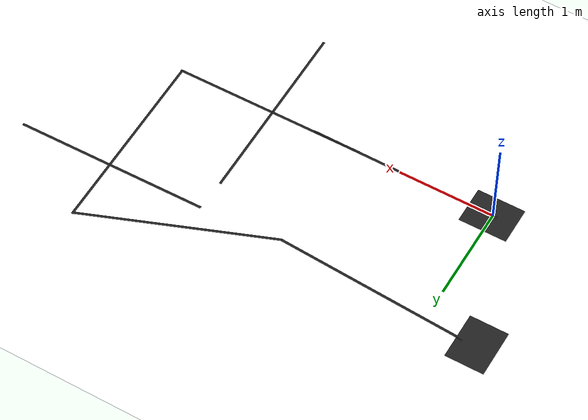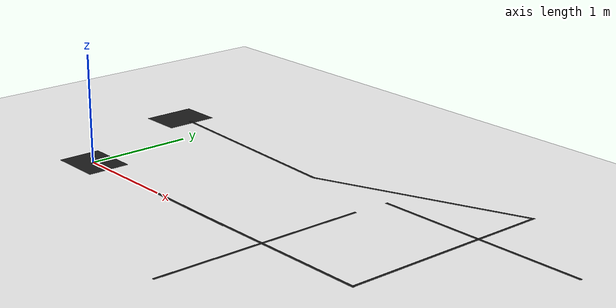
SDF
<sdf version="1.7">
 <world name="default">
  <light name="sun" type="directional">
   <pose>0 0 10 0 -0 0</pose>
   <diffuse>0.8 0.8 0.8 1</diffuse>
   <specular>0.2 0.2 0.2 1</specular>
   <attenuation>
    <range>1000</range>
    <constant>0.9</constant>
    <linear>0.01</linear>
    <quadratic>0.001</quadratic>
   </attenuation>
   <direction>-0.5 0.1 -0.9</direction>
   <spot><inner_angle>0</inner_angle><outer_angle>0</outer_angle><falloff>0</falloff></spot>
  </light>
  <model name="ground_plane">
   <static>1</static>
   <link name="link">
    <collision name="collision">
     <geometry><plane><normal>0 0 1</normal><size>100 100</size></plane></geometry>
     <surface>
      <contact><collide_bitmask>65535</collide_bitmask></contact>
      <friction><ode><mu>100</mu><mu2>50</mu2></ode></friction>
     </surface>
    </collision>
    <visual name="visual">
     <cast_shadows>0</cast_shadows>
     <geometry><plane><normal>0 0 1</normal><size>100 100</size></plane></geometry>
     <material><ambient>1 1 1 1</ambient><diffuse>1 1 1 1</diffuse><name>MyMaterials/White</name></material>
    </visual>
   </link>
  </model>
  <gravity>0 0 -9.8</gravity>
  <magnetic_field>6e-06 2.3e-05 -4.2e-05</magnetic_field>
  <atmosphere type="adiabatic"/>
  <physics type="ode">
   <max_step_size>0.001</max_step_size>
   <real_time_factor>1</real_time_factor>
   <real_time_update_rate>1000</real_time_update_rate>
  </physics>
  <scene><ambient>0.4 0.4 0.4 1</ambient><background>0.7 0.7 0.7 1</background><shadows>1</shadows></scene>
  <spherical_coordinates>
   <surface_model>EARTH_WGS84</surface_model>
   <latitude_deg>0</latitude_deg>
   <longitude_deg>0</longitude_deg>
   <elevation>0</elevation>
   <heading_deg>0</heading_deg>
  </spherical_coordinates>
  <model name="black_box">
   <static>1</static>
   <link name="link">
    <visual name="visual">
     <geometry><box><size>0.4 0.5 0.001</size></box></geometry>
     <material>
      <script><uri>file://media/materials/scripts/gazebo.material</uri><name>Gazebo/Black</name></script>
     </material>
    </visual>
   </link>
   <pose>0.007556 0.003272 0 0 0 -1.56957</pose>
  </model>
  <model name="black_line_clone">
   <static>1</static>
   <link name="link">
    <visual name="visual">
     <geometry><box><size>0.025 2 0.001</size></box></geometry>
     <material>
      <script><uri>file://media/materials/scripts/gazebo.material</uri><name>Gazebo/Black</name></script>
     </material>
    </visual>
   </link>
   <pose>2.45469 -0.005266 0 0 0 -1.56665</pose>
  </model>
  <model name="black_line_0">
   <static>1</static>
   <link name="link">
    <visual name="visual">
     <geometry><box><size>0.025 2 0.001</size></box></geometry>
     <material>
      <script><uri>file://media/materials/scripts/gazebo.material</uri><name>Gazebo/Black</name></script>
     </material>
    </visual>
   </link>
   <pose>3.44004 0.989289 0 0 -0 0</pose>
  </model>
  <model name="black_line">
   <static>1</static>
   <link name="link">
    <visual name="visual">
     <geometry><box><size>0.025 2 0.001</size></box></geometry>
     <material>
      <script><uri>file://media/materials/scripts/gazebo.material</uri><name>Gazebo/Black</name></script>
     </material>
    </visual>
   </link>
   <pose>0.950138 -0.004008 0 0 0 -1.57818</pose>
  </model>
  <model name="black_line_1">
   <static>1</static>
   <link name="link">
    <visual name="visual">
     <geometry><box><size>0.025 2 0.001</size></box></geometry>
     <material>
      <script><uri>file://media/materials/scripts/gazebo.material</uri><name>Gazebo/Black</name></script>
     </material>
    </visual>
   </link>
   <pose>2.51207 1.61185 0 0 -0 1.9439</pose>
  </model>
  <model name="black_line_2">
   <static>1</static>
   <link name="link">
    <visual name="visual">
     <geometry><box><size>0.025 2 0.001</size></box></geometry>
     <material>
      <script><uri>file://media/materials/scripts/gazebo.material</uri><name>Gazebo/Black</name></script>
     </material>
    </visual>
   </link>
   <pose>0.595287 1.30892 0 0 0 -1.63157</pose>
  </model>
  <model name="black_box_0">
   <static>1</static>
   <link name="link">
    <visual name="visual">
     <geometry><box><size>0.4 0.5 0.001</size></box></geometry>
     <material>
      <script><uri>file://media/materials/scripts/gazebo.material</uri><name>Gazebo/Black</name></script>
     </material>
    </visual>
   </link>
   <pose>-0.539939 1.35257 0 0 -0 0</pose>
  </model>
  <model name="black_line_3">
   <static>1</static>
   <link name="link">
    <visual name="visual">
     <geometry><box><size>0.025 2 0.001</size></box></geometry>
     <material>
      <script><uri>file://media/materials/scripts/gazebo.material</uri><name>Gazebo/Black</name></script>
     </material>
    </visual>
   </link>
   <pose>2.41364 -0.018762 0 0 -0 0</pose>
  </model>
  <model name="black_line_4">
   <static>1</static>
   <link name="link">
    <visual name="visual">
     <geometry><box><size>0.025 2 0.001</size></box></geometry>
     <material>
      <script><uri>file://media/materials/scripts/gazebo.material</uri><name>Gazebo/Black</name></script>
     </material>
    </visual>
   </link>
   <pose>3.42677 1.32599 0 0 0 -1.55893</pose>
  </model>
 </world>
</sdf>
